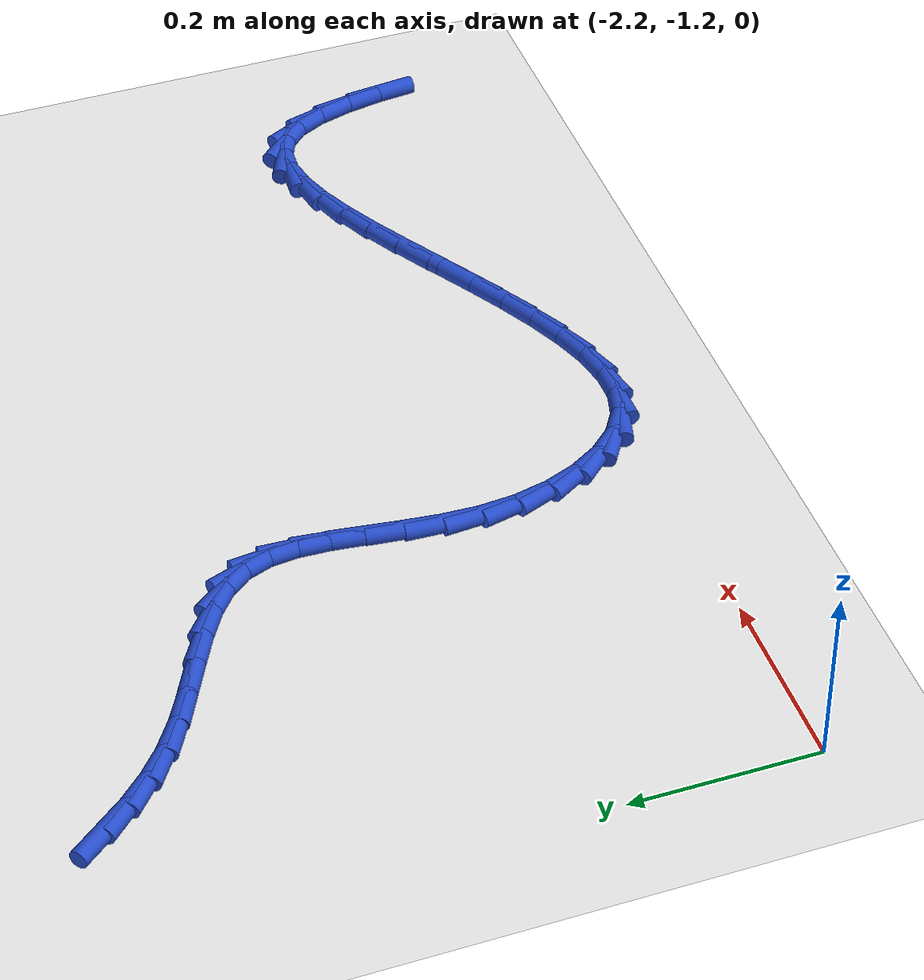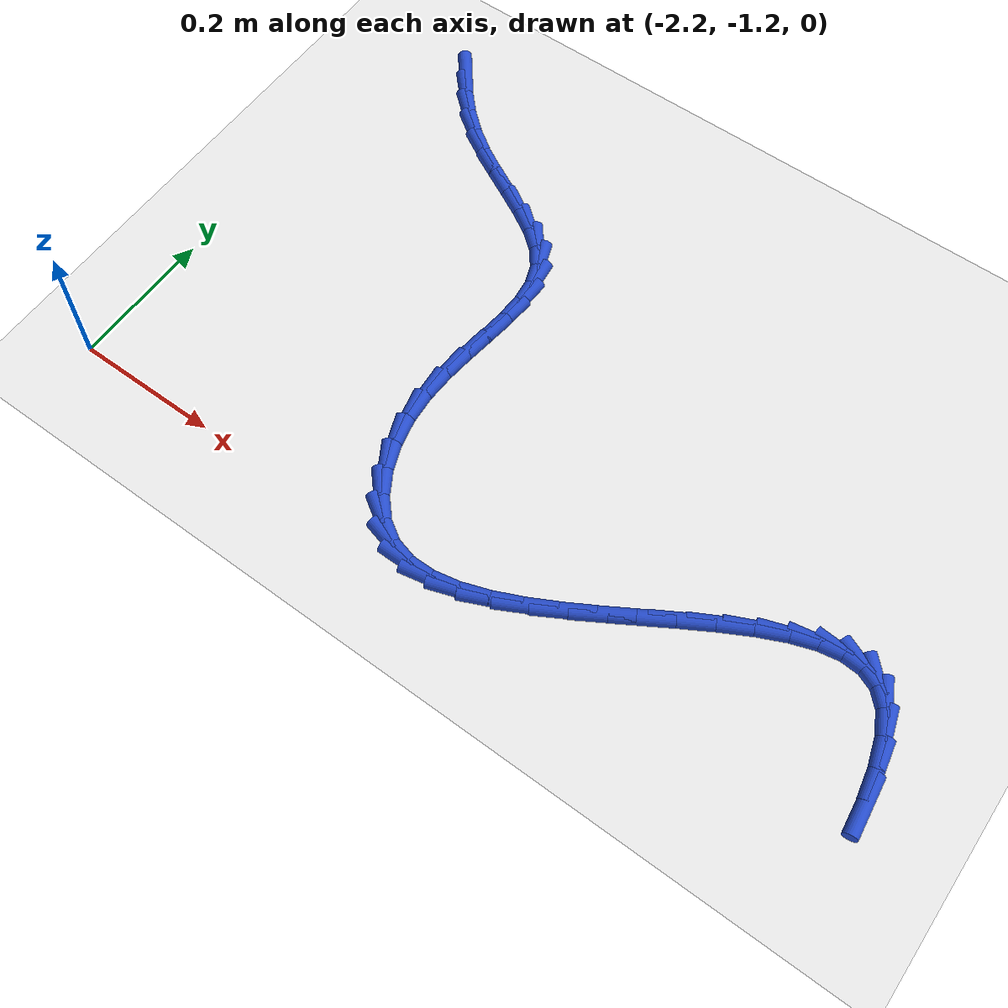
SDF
<sdf version="1.6">
 <world name="default">
  <model name="ground_plane">
   <static>1</static>
   <link name="link">
    <collision name="collision">
     <geometry><plane><normal>0 0 1</normal><size>100 100</size></plane></geometry>
     <surface><friction><ode><mu>100</mu><mu2>50</mu2></ode></friction></surface>
    </collision>
    <visual name="visual">
     <cast_shadows>0</cast_shadows>
     <geometry><plane><normal>0 0 1</normal><size>100 100</size></plane></geometry>
     <material>
      <script><uri>file://media/materials/scripts/gazebo.material</uri><name>Gazebo/WhiteGlow</name></script>
     </material>
    </visual>
   </link>
  </model>
  <model name="line">
   <link name="link_157">
    <pose>-2.0789004155050663 -0.5359606173617248 0.01 0 1.57 -0.9078004519411259</pose>
    <collision name="collision">
     <geometry><cylinder><radius>0.01</radius><length>0.08</length></cylinder></geometry>
    </collision>
    <visual name="visual">
     <material>
      <script><name>Gazebo/Blue</name><uri>file://media/materials/scripts/gazebo.material</uri></script>
     </material>
     <geometry><cylinder><radius>0.01</radius><length>0.08</length></cylinder></geometry>
    </visual>
   </link>
   <link name="link_158">
    <pose>-2.056776296769317 -0.5642915824898882 0.01 0 1.57 -0.815956750216248</pose>
    <collision name="collision">
     <geometry><cylinder><radius>0.01</radius><length>0.08</length></cylinder></geometry>
    </collision>
    <visual name="visual">
     <material>
      <script><name>Gazebo/Blue</name><uri>file://media/materials/scripts/gazebo.material</uri></script>
     </material>
     <geometry><cylinder><radius>0.01</radius><length>0.08</length></cylinder></geometry>
    </visual>
   </link>
   <link name="link_159">
    <pose>-2.0319974836737917 -0.5906330454239378 0.01 0 1.57 -0.7135799469703918</pose>
    <collision name="collision">
     <geometry><cylinder><radius>0.01</radius><length>0.08</length></cylinder></geometry>
    </collision>
    <visual name="visual">
     <material>
      <script><name>Gazebo/Blue</name><uri>file://media/materials/scripts/gazebo.material</uri></script>
     </material>
     <geometry><cylinder><radius>0.01</radius><length>0.08</length></cylinder></geometry>
    </visual>
   </link>
   <link name="link_160">
    <pose>-2.0042316316912436 -0.6146719614917677 0.01 0 1.57 -0.6041496229908968</pose>
    <collision name="collision">
     <geometry><cylinder><radius>0.01</radius><length>0.08</length></cylinder></geometry>
    </collision>
    <visual name="visual">
     <material>
      <script><name>Gazebo/Blue</name><uri>file://media/materials/scripts/gazebo.material</uri></script>
     </material>
     <geometry><cylinder><radius>0.01</radius><length>0.08</length></cylinder></geometry>
    </visual>
   </link>
   <link name="link_161">
    <pose>-1.9731716806376287 -0.6361109688576919 0.01 0 1.57 -0.5162591555220446</pose>
    <collision name="collision">
     <geometry><cylinder><radius>0.01</radius><length>0.08</length></cylinder></geometry>
    </collision>
    <visual name="visual">
     <material>
      <script><name>Gazebo/Blue</name><uri>file://media/materials/scripts/gazebo.material</uri></script>
     </material>
     <geometry><cylinder><radius>0.01</radius><length>0.08</length></cylinder></geometry>
    </visual>
   </link>
   <link name="link_162">
    <pose>-1.9394636176448856 -0.6552438416723317 0.01 0 1.57 -0.47822896128433307</pose>
    <collision name="collision">
     <geometry><cylinder><radius>0.01</radius><length>0.08</length></cylinder></geometry>
    </collision>
    <visual name="visual">
     <material>
      <script><name>Gazebo/Blue</name><uri>file://media/materials/scripts/gazebo.material</uri></script>
     </material>
     <geometry><cylinder><radius>0.01</radius><length>0.08</length></cylinder></geometry>
    </visual>
   </link>
   <link name="link_163">
    <pose>-1.904974457245998 -0.673121707079092 0.01 0 1.57 -0.4888143986917622</pose>
    <collision name="collision">
     <geometry><cylinder><radius>0.01</radius><length>0.08</length></cylinder></geometry>
    </collision>
    <visual name="visual">
     <material>
      <script><name>Gazebo/Blue</name><uri>file://media/materials/scripts/gazebo.material</uri></script>
     </material>
     <geometry><cylinder><radius>0.01</radius><length>0.08</length></cylinder></geometry>
    </visual>
   </link>
   <link name="link_164">
    <pose>-1.8716511279814088 -0.6908452595878942 0.01 0 1.57 -0.5535450240938061</pose>
    <collision name="collision">
     <geometry><cylinder><radius>0.01</radius><length>0.08</length></cylinder></geometry>
    </collision>
    <visual name="visual">
     <material>
      <script><name>Gazebo/Blue</name><uri>file://media/materials/scripts/gazebo.material</uri></script>
     </material>
     <geometry><cylinder><radius>0.01</radius><length>0.08</length></cylinder></geometry>
    </visual>
   </link>
   <link name="link_165">
    <pose>-1.841440558391559 -0.7095151937086599 0.01 0 1.57 -0.6890314597653835</pose>
    <collision name="collision">
     <geometry><cylinder><radius>0.01</radius><length>0.08</length></cylinder></geometry>
    </collision>
    <visual name="visual">
     <material>
      <script><name>Gazebo/Blue</name><uri>file://media/materials/scripts/gazebo.material</uri></script>
     </material>
     <geometry><cylinder><radius>0.01</radius><length>0.08</length></cylinder></geometry>
    </visual>
   </link>
   <link name="link_166">
    <pose>-1.8162896770168935 -0.73023220395131 0.01 0 1.57 -0.9206984109966259</pose>
    <collision name="collision">
     <geometry><cylinder><radius>0.01</radius><length>0.08</length></cylinder></geometry>
    </collision>
    <visual name="visual">
     <material>
      <script><name>Gazebo/Blue</name><uri>file://media/materials/scripts/gazebo.material</uri></script>
     </material>
     <geometry><cylinder><radius>0.01</radius><length>0.08</length></cylinder></geometry>
    </visual>
   </link>
   <link name="link_167">
    <pose>-1.7981442621510657 -0.7540964798281571 0.01 0 1.57 -1.2217710058525422</pose>
    <collision name="collision">
     <geometry><cylinder><radius>0.01</radius><length>0.08</length></cylinder></geometry>
    </collision>
    <visual name="visual">
     <material>
      <script><name>Gazebo/Blue</name><uri>file://media/materials/scripts/gazebo.material</uri></script>
     </material>
     <geometry><cylinder><radius>0.01</radius><length>0.08</length></cylinder></geometry>
    </visual>
   </link>
   <link name="link_168">
    <pose>-1.7880564939260735 -0.7818158907515945 0.01 0 1.57 -1.4600066014789332</pose>
    <collision name="collision">
     <geometry><cylinder><radius>0.01</radius><length>0.08</length></cylinder></geometry>
    </collision>
    <visual name="visual">
     <material>
      <script><name>Gazebo/Blue</name><uri>file://media/materials/scripts/gazebo.material</uri></script>
     </material>
     <geometry><cylinder><radius>0.01</radius><length>0.08</length></cylinder></geometry>
    </visual>
   </link>
   <link name="link_169">
    <pose>-1.7845869208988725 -0.8130043948096323 0.01 0 1.57 1.5333076621526263</pose>
    <collision name="collision">
     <geometry><cylinder><radius>0.01</radius><length>0.08</length></cylinder></geometry>
    </collision>
    <visual name="visual">
     <material>
      <script><name>Gazebo/Blue</name><uri>file://media/materials/scripts/gazebo.material</uri></script>
     </material>
     <geometry><cylinder><radius>0.01</radius><length>0.08</length></cylinder></geometry>
    </visual>
   </link>
   <link name="link_170">
    <pose>-1.7858652230584684 -0.8470867840793334 0.01 0 1.57 1.4571199654497657</pose>
    <collision name="collision">
     <geometry><cylinder><radius>0.01</radius><length>0.08</length></cylinder></geometry>
    </collision>
    <visual name="visual">
     <material>
      <script><name>Gazebo/Blue</name><uri>file://media/materials/scripts/gazebo.material</uri></script>
     </material>
     <geometry><cylinder><radius>0.01</radius><length>0.08</length></cylinder></geometry>
    </visual>
   </link>
   <link name="link_171">
    <pose>-1.7900210803938652 -0.8834878506377601 0.01 0 1.57 1.4362579694201492</pose>
    <collision name="collision">
     <geometry><cylinder><radius>0.01</radius><length>0.08</length></cylinder></geometry>
    </collision>
    <visual name="visual">
     <material>
      <script><name>Gazebo/Blue</name><uri>file://media/materials/scripts/gazebo.material</uri></script>
     </material>
     <geometry><cylinder><radius>0.01</radius><length>0.08</length></cylinder></geometry>
    </visual>
   </link>
   <link name="link_172">
    <pose>-1.7951841728940694 -0.9216323865619765 0.01 0 1.57 1.4618500855248722</pose>
    <collision name="collision">
     <geometry><cylinder><radius>0.01</radius><length>0.08</length></cylinder></geometry>
    </collision>
    <visual name="visual">
     <material>
      <script><name>Gazebo/Blue</name><uri>file://media/materials/scripts/gazebo.material</uri></script>
     </material>
     <geometry><cylinder><radius>0.01</radius><length>0.08</length></cylinder></geometry>
    </visual>
   </link>
   <link name="link_173">
    <pose>-1.7994841805480841 -0.9609451839290429 0.01 0 1.57 1.5315590040485607</pose>
    <collision name="collision">
     <geometry><cylinder><radius>0.01</radius><length>0.08</length></cylinder></geometry>
    </collision>
    <visual name="visual">
     <material>
      <script><name>Gazebo/Blue</name><uri>file://media/materials/scripts/gazebo.material</uri></script>
     </material>
     <geometry><cylinder><radius>0.01</radius><length>0.08</length></cylinder></geometry>
    </visual>
   </link>
   <link name="link_174">
    <pose>-1.8010507833449148 -1.0008510348160227 0.01 0 1.57 -1.4950420251474406</pose>
    <collision name="collision">
     <geometry><cylinder><radius>0.01</radius><length>0.08</length></cylinder></geometry>
    </collision>
    <visual name="visual">
     <material>
      <script><name>Gazebo/Blue</name><uri>file://media/materials/scripts/gazebo.material</uri></script>
     </material>
     <geometry><cylinder><radius>0.01</radius><length>0.08</length></cylinder></geometry>
    </visual>
   </link>
   <link name="link_175">
    <pose>-1.7980208798495867 -1.0407709508364438 0.01 0 1.57 -1.3506247490998928</pose>
    <collision name="collision">
     <geometry><cylinder><radius>0.01</radius><length>0.08</length></cylinder></geometry>
    </collision>
    <visual name="visual">
     <material>
      <script><name>Gazebo/Blue</name><uri>file://media/materials/scripts/gazebo.material</uri></script>
     </material>
     <geometry><cylinder><radius>0.01</radius><length>0.08</length></cylinder></geometry>
    </visual>
   </link>
   <link name="link_176">
    <pose>-1.7893037807079017 -1.0797214212024058 0.01 0 1.57 -1.2010212846220474</pose>
    <collision name="collision">
     <geometry><cylinder><radius>0.01</radius><length>0.08</length></cylinder></geometry>
    </collision>
    <visual name="visual">
     <material>
      <script><name>Gazebo/Blue</name><uri>file://media/materials/scripts/gazebo.material</uri></script>
     </material>
     <geometry><cylinder><radius>0.01</radius><length>0.08</length></cylinder></geometry>
    </visual>
   </link>
   <link name="link_177">
    <pose>-1.775257449225033 -1.1159602566081799 0.01 0 1.57 -1.0341606863862847</pose>
    <collision name="collision">
     <geometry><cylinder><radius>0.01</radius><length>0.08</length></cylinder></geometry>
    </collision>
    <visual name="visual">
     <material>
      <script><name>Gazebo/Blue</name><uri>file://media/materials/scripts/gazebo.material</uri></script>
     </material>
     <geometry><cylinder><radius>0.01</radius><length>0.08</length></cylinder></geometry>
    </visual>
   </link>
   <link name="link_178">
    <pose>-1.7563993222783485 -1.1476617493334584 0.01 0 1.57 -0.8304473702950266</pose>
    <collision name="collision">
     <geometry><cylinder><radius>0.01</radius><length>0.08</length></cylinder></geometry>
    </collision>
    <visual name="visual">
     <material>
      <script><name>Gazebo/Blue</name><uri>file://media/materials/scripts/gazebo.material</uri></script>
     </material>
     <geometry><cylinder><radius>0.01</radius><length>0.08</length></cylinder></geometry>
    </visual>
   </link>
   <link name="link_179">
    <pose>-1.7332468367452174 -1.173000191657932 0.01 0 1.57 -0.5671967575770067</pose>
    <collision name="collision">
     <geometry><cylinder><radius>0.01</radius><length>0.08</length></cylinder></geometry>
    </collision>
    <visual name="visual">
     <material>
      <script><name>Gazebo/Blue</name><uri>file://media/materials/scripts/gazebo.material</uri></script>
     </material>
     <geometry><cylinder><radius>0.01</radius><length>0.08</length></cylinder></geometry>
    </visual>
   </link>
   <link name="link_180">
    <pose>-1.70631734405298 -1.1901548361147092 0.01 0 1.57 -0.25986079799941353</pose>
    <collision name="collision">
     <geometry><cylinder><radius>0.01</radius><length>0.08</length></cylinder></geometry>
    </collision>
    <visual name="visual">
     <material>
      <script><name>Gazebo/Blue</name><uri>file://media/materials/scripts/gazebo.material</uri></script>
     </material>
     <geometry><cylinder><radius>0.01</radius><length>0.08</length></cylinder></geometry>
    </visual>
   </link>
   <link name="link_181">
    <pose>-1.6761130290681425 -1.1981853326775036 0.01 0 1.57 0.004476997973868027</pose>
    <collision name="collision">
     <geometry><cylinder><radius>0.01</radius><length>0.08</length></cylinder></geometry>
    </collision>
    <visual name="visual">
     <material>
      <script><name>Gazebo/Blue</name><uri>file://media/materials/scripts/gazebo.material</uri></script>
     </material>
     <geometry><cylinder><radius>0.01</radius><length>0.08</length></cylinder></geometry>
    </visual>
   </link>
   <link name="link_182">
    <pose>-1.6431035828927165 -1.198037548466485 0.01 0 1.57 0.19921303554239045</pose>
    <collision name="collision">
     <geometry><cylinder><radius>0.01</radius><length>0.08</length></cylinder></geometry>
    </collision>
    <visual name="visual">
     <material>
      <script><name>Gazebo/Blue</name><uri>file://media/materials/scripts/gazebo.material</uri></script>
     </material>
     <geometry><cylinder><radius>0.01</radius><length>0.08</length></cylinder></geometry>
    </visual>
   </link>
   <link name="link_183">
    <pose>-1.607754501157026 -1.1909008918089434 0.01 0 1.57 0.3344711127186619</pose>
    <collision name="collision">
     <geometry><cylinder><radius>0.01</radius><length>0.08</length></cylinder></geometry>
    </collision>
    <visual name="visual">
     <material>
      <script><name>Gazebo/Blue</name><uri>file://media/materials/scripts/gazebo.material</uri></script>
     </material>
     <geometry><cylinder><radius>0.01</radius><length>0.08</length></cylinder></geometry>
    </visual>
   </link>
   <link name="link_184">
    <pose>-1.570531279491395 -1.1779647710321675 0.01 0 1.57 0.42633220727601434</pose>
    <collision name="collision">
     <geometry><cylinder><radius>0.01</radius><length>0.08</length></cylinder></geometry>
    </collision>
    <visual name="visual">
     <material>
      <script><name>Gazebo/Blue</name><uri>file://media/materials/scripts/gazebo.material</uri></script>
     </material>
     <geometry><cylinder><radius>0.01</radius><length>0.08</length></cylinder></geometry>
    </visual>
   </link>
   <link name="link_185">
    <pose>-1.5318994135261494 -1.1604185944634484 0.01 0 1.57 0.4872020570172521</pose>
    <collision name="collision">
     <geometry><cylinder><radius>0.01</radius><length>0.08</length></cylinder></geometry>
    </collision>
    <visual name="visual">
     <material>
      <script><name>Gazebo/Blue</name><uri>file://media/materials/scripts/gazebo.material</uri></script>
     </material>
     <geometry><cylinder><radius>0.01</radius><length>0.08</length></cylinder></geometry>
    </visual>
   </link>
   <link name="link_186">
    <pose>-1.4923243988916133 -1.1394517704300746 0.01 0 1.57 0.5249767001721724</pose>
    <collision name="collision">
     <geometry><cylinder><radius>0.01</radius><length>0.08</length></cylinder></geometry>
    </collision>
    <visual name="visual">
     <material>
      <script><name>Gazebo/Blue</name><uri>file://media/materials/scripts/gazebo.material</uri></script>
     </material>
     <geometry><cylinder><radius>0.01</radius><length>0.08</length></cylinder></geometry>
    </visual>
   </link>
   <link name="link_187">
    <pose>-1.4522717312181113 -1.1162537072593364 0.01 0 1.57 0.5441001921309442</pose>
    <collision name="collision">
     <geometry><cylinder><radius>0.01</radius><length>0.08</length></cylinder></geometry>
    </collision>
    <visual name="visual">
     <material>
      <script><name>Gazebo/Blue</name><uri>file://media/materials/scripts/gazebo.material</uri></script>
     </material>
     <geometry><cylinder><radius>0.01</radius><length>0.08</length></cylinder></geometry>
    </visual>
   </link>
   <link name="link_188">
    <pose>-1.4122069061359672 -1.0920138132785226 0.01 0 1.57 0.5464383502074726</pose>
    <collision name="collision">
     <geometry><cylinder><radius>0.01</radius><length>0.08</length></cylinder></geometry>
    </collision>
    <visual name="visual">
     <material>
      <script><name>Gazebo/Blue</name><uri>file://media/materials/scripts/gazebo.material</uri></script>
     </material>
     <geometry><cylinder><radius>0.01</radius><length>0.08</length></cylinder></geometry>
    </visual>
   </link>
   <link name="link_189">
    <pose>-1.3725954192755083 -1.0679214968149242 0.01 0 1.57 0.5316270303186934</pose>
    <collision name="collision">
     <geometry><cylinder><radius>0.01</radius><length>0.08</length></cylinder></geometry>
    </collision>
    <visual name="visual">
     <material>
      <script><name>Gazebo/Blue</name><uri>file://media/materials/scripts/gazebo.material</uri></script>
     </material>
     <geometry><cylinder><radius>0.01</radius><length>0.08</length></cylinder></geometry>
    </visual>
   </link>
   <link name="link_190">
    <pose>-1.3339027662670582 -1.0451661661958307 0.01 0 1.57 0.4968425384254276</pose>
    <collision name="collision">
     <geometry><cylinder><radius>0.01</radius><length>0.08</length></cylinder></geometry>
    </collision>
    <visual name="visual">
     <material>
      <script><name>Gazebo/Blue</name><uri>file://media/materials/scripts/gazebo.material</uri></script>
     </material>
     <geometry><cylinder><radius>0.01</radius><length>0.08</length></cylinder></geometry>
    </visual>
   </link>
   <link name="link_191">
    <pose>-1.2965944427409413 -1.0249372297485306 0.01 0 1.57 0.43583564819461706</pose>
    <collision name="collision">
     <geometry><cylinder><radius>0.01</radius><length>0.08</length></cylinder></geometry>
    </collision>
    <visual name="visual">
     <material>
      <script><name>Gazebo/Blue</name><uri>file://media/materials/scripts/gazebo.material</uri></script>
     </material>
     <geometry><cylinder><radius>0.01</radius><length>0.08</length></cylinder></geometry>
    </visual>
   </link>
   <link name="link_192">
    <pose>-1.2611359443274825 -1.0084240958003148 0.01 0 1.57 0.3368847572300218</pose>
    <collision name="collision">
     <geometry><cylinder><radius>0.01</radius><length>0.08</length></cylinder></geometry>
    </collision>
    <visual name="visual">
     <material>
      <script><name>Gazebo/Blue</name><uri>file://media/materials/scripts/gazebo.material</uri></script>
     </material>
     <geometry><cylinder><radius>0.01</radius><length>0.08</length></cylinder></geometry>
    </visual>
   </link>
   <link name="link_193">
    <pose>-1.2279927666570067 -0.9968161726784726 0.01 0 1.57 0.17962632273559043</pose>
    <collision name="collision">
     <geometry><cylinder><radius>0.01</radius><length>0.08</length></cylinder></geometry>
    </collision>
    <visual name="visual">
     <material>
      <script><name>Gazebo/Blue</name><uri>file://media/materials/scripts/gazebo.material</uri></script>
     </material>
     <geometry><cylinder><radius>0.01</radius><length>0.08</length></cylinder></geometry>
    </visual>
   </link>
   <link name="link_194">
    <pose>-1.1976304053598386 -0.9913028687102932 0.01 0 1.57 -0.06520909234085456</pose>
    <collision name="collision">
     <geometry><cylinder><radius>0.01</radius><length>0.08</length></cylinder></geometry>
    </collision>
    <visual name="visual">
     <material>
      <script><name>Gazebo/Blue</name><uri>file://media/materials/scripts/gazebo.material</uri></script>
     </material>
     <geometry><cylinder><radius>0.01</radius><length>0.08</length></cylinder></geometry>
    </visual>
   </link>
   <link name="link_195">
    <pose>-1.1705143560663027 -0.9930735922230665 0.01 0 1.57 -0.4125826995164991</pose>
    <collision name="collision">
     <geometry><cylinder><radius>0.01</radius><length>0.08</length></cylinder></geometry>
    </collision>
    <visual name="visual">
     <material>
      <script><name>Gazebo/Blue</name><uri>file://media/materials/scripts/gazebo.material</uri></script>
     </material>
     <geometry><cylinder><radius>0.01</radius><length>0.08</length></cylinder></geometry>
    </visual>
   </link>
   <link name="link_196">
    <pose>-1.1471101144067237 -1.0033177515440823 0.01 0 1.57 -0.8026436570679641</pose>
    <collision name="collision">
     <geometry><cylinder><radius>0.01</radius><length>0.08</length></cylinder></geometry>
    </collision>
    <visual name="visual">
     <material>
      <script><name>Gazebo/Blue</name><uri>file://media/materials/scripts/gazebo.material</uri></script>
     </material>
     <geometry><cylinder><radius>0.01</radius><length>0.08</length></cylinder></geometry>
    </visual>
   </link>
   <link name="link_197">
    <pose>-1.1278820380798302 -1.0232207291215274 0.01 0 1.57 -1.1070997527312882</pose>
    <collision name="collision">
     <geometry><cylinder><radius>0.01</radius><length>0.08</length></cylinder></geometry>
    </collision>
    <visual name="visual">
     <material>
      <script><name>Gazebo/Blue</name><uri>file://media/materials/scripts/gazebo.material</uri></script>
     </material>
     <geometry><cylinder><radius>0.01</radius><length>0.08</length></cylinder></geometry>
    </visual>
   </link>
   <link name="link_198">
    <pose>-1.1130099518981207 -1.052961260778309 0.01 0 1.57 -1.2851180182362618</pose>
    <collision name="collision">
     <geometry><cylinder><radius>0.01</radius><length>0.08</length></cylinder></geometry>
    </collision>
    <visual name="visual">
     <material>
      <script><name>Gazebo/Blue</name><uri>file://media/materials/scripts/gazebo.material</uri></script>
     </material>
     <geometry><cylinder><radius>0.01</radius><length>0.08</length></cylinder></geometry>
    </visual>
   </link>
   <link name="link_199">
    <pose>-1.102016145087372 -1.0903917924376414 0.01 0 1.57 -1.3924838078361783</pose>
    <collision name="collision">
     <geometry><cylinder><radius>0.01</radius><length>0.08</length></cylinder></geometry>
    </collision>
    <visual name="visual">
     <material>
      <script><name>Gazebo/Blue</name><uri>file://media/materials/scripts/gazebo.material</uri></script>
     </material>
     <geometry><cylinder><radius>0.01</radius><length>0.08</length></cylinder></geometry>
    </visual>
   </link>
   <link name="link_200">
    <pose>-1.094330309286916 -1.133037169761349 0.01 0 1.57 -1.4621988073214252</pose>
    <collision name="collision">
     <geometry><cylinder><radius>0.01</radius><length>0.08</length></cylinder></geometry>
    </collision>
    <visual name="visual">
     <material>
      <script><name>Gazebo/Blue</name><uri>file://media/materials/scripts/gazebo.material</uri></script>
     </material>
     <geometry><cylinder><radius>0.01</radius><length>0.08</length></cylinder></geometry>
    </visual>
   </link>
  </model>
 </world>
</sdf>
